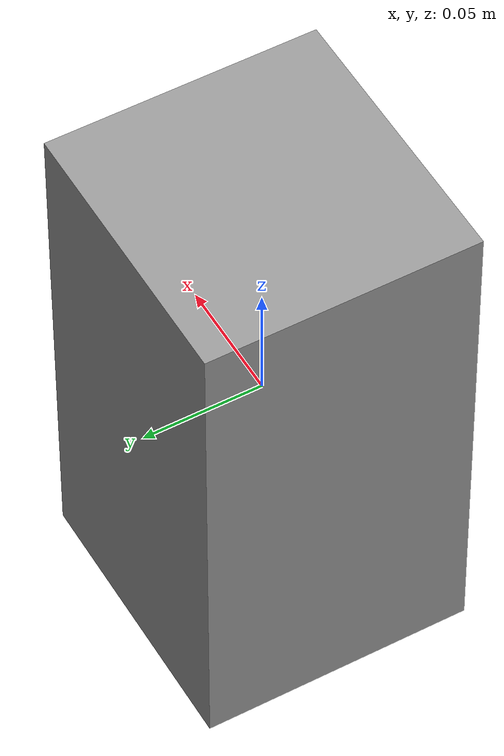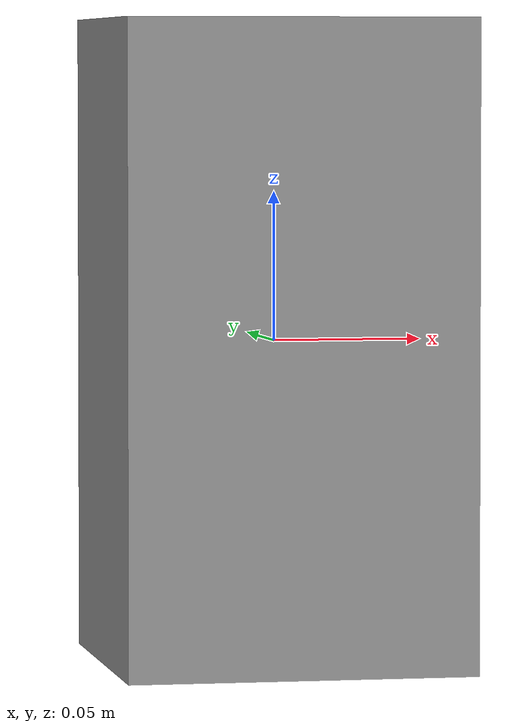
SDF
<?xml version='1.0'?>
<sdf version='1.6'>
  <model name='blockButton'>
    <link name='link_2'>
      <pose frame=''>1e-06 0 -0 0 -0 0</pose>
      <inertial>
        <mass>0.0027919</mass>
        <inertia>
          <ixx>1.37016e-05</ixx>
          <ixy>0</ixy>
          <ixz>0</ixz>
          <iyy>1.39635e-05</iyy>
          <iyz>0</iyz>
          <izz>6.03057e-06</izz>
        </inertia>
        <pose frame=''>0 0 0 0 -0 0</pose>
      </inertial>
      <visual name='visual'>
        <pose frame=''>0 0 0 0 -0 0</pose>
        <geometry>
          <box>
            <size>0.116283 0.111346 0.21565</size>
          </box>
        </geometry>
        <material>
          <lighting>1</lighting>
          <script>
            <uri>file://media/materials/scripts/gazebo.material</uri>
            <name>Gazebo/Grey</name>
          </script>
          <ambient>0.3 0.3 0.3 1</ambient>
          <diffuse>0.7 0.7 0.7 1</diffuse>
          <specular>0.01 0.01 0.01 1</specular>
          <emissive>0 0 0 1</emissive>
        </material>
        <cast_shadows>1</cast_shadows>
        <transparency>0</transparency>
      </visual>
      <collision name='collision'>
        <laser_retro>0</laser_retro>
        <max_contacts>10</max_contacts>
        <pose frame=''>0 0 0 0 -0 0</pose>
        <geometry>
          <box>
            <size>0.116283 0.111346 0.21565</size>
          </box>
        </geometry>
        <surface>
          <friction>
            <ode>
              <mu>1</mu>
              <mu2>1</mu2>
              <fdir1>0 0 0</fdir1>
              <slip1>0</slip1>
              <slip2>0</slip2>
            </ode>
            <torsional>
              <coefficient>1</coefficient>
              <patch_radius>0</patch_radius>
              <surface_radius>0</surface_radius>
              <use_patch_radius>1</use_patch_radius>
              <ode>
                <slip>0</slip>
              </ode>
            </torsional>
          </friction>
          <bounce>
            <restitution_coefficient>0</restitution_coefficient>
            <threshold>1e+06</threshold>
          </bounce>
          <contact>
            <collide_without_contact>0</collide_without_contact>
            <collide_without_contact_bitmask>1</collide_without_contact_bitmask>
            <collide_bitmask>1</collide_bitmask>
            <ode>
              <soft_cfm>0</soft_cfm>
              <soft_erp>0.2</soft_erp>
              <kp>1e+13</kp>
              <kd>1</kd>
              <max_vel>0.01</max_vel>
              <min_depth>0</min_depth>
            </ode>
            <bullet>
              <split_impulse>1</split_impulse>
              <split_impulse_penetration_threshold>-0.01</split_impulse_penetration_threshold>
              <soft_cfm>0</soft_cfm>
              <soft_erp>0.2</soft_erp>
              <kp>1e+13</kp>
              <kd>1</kd>
            </bullet>
          </contact>
        </surface>
      </collision>
    </link>
    <static>0</static>
    <allow_auto_disable>1</allow_auto_disable>
  </model>
</sdf>
